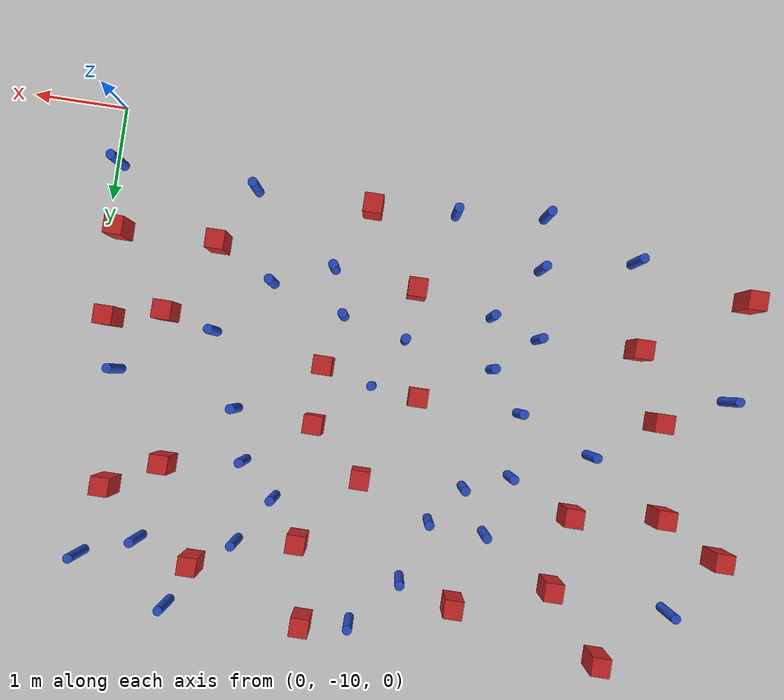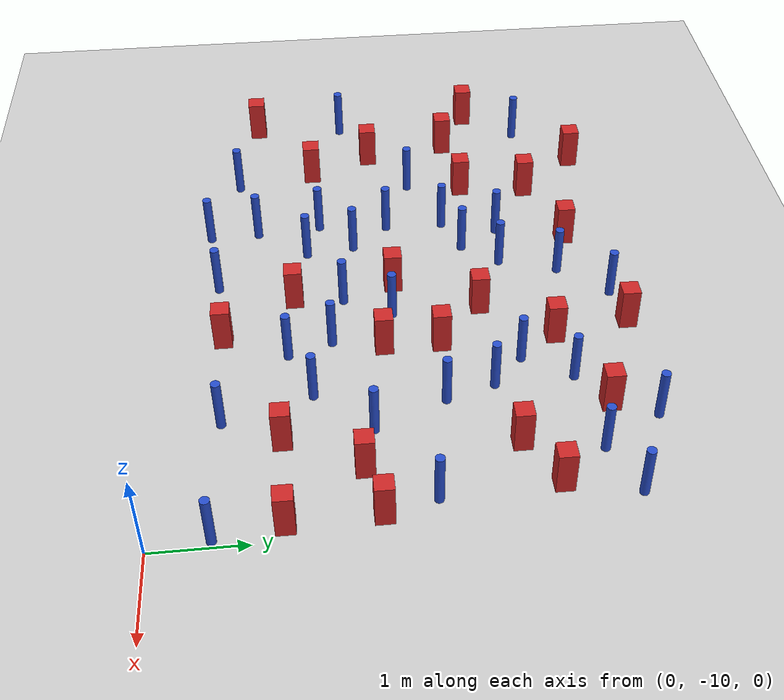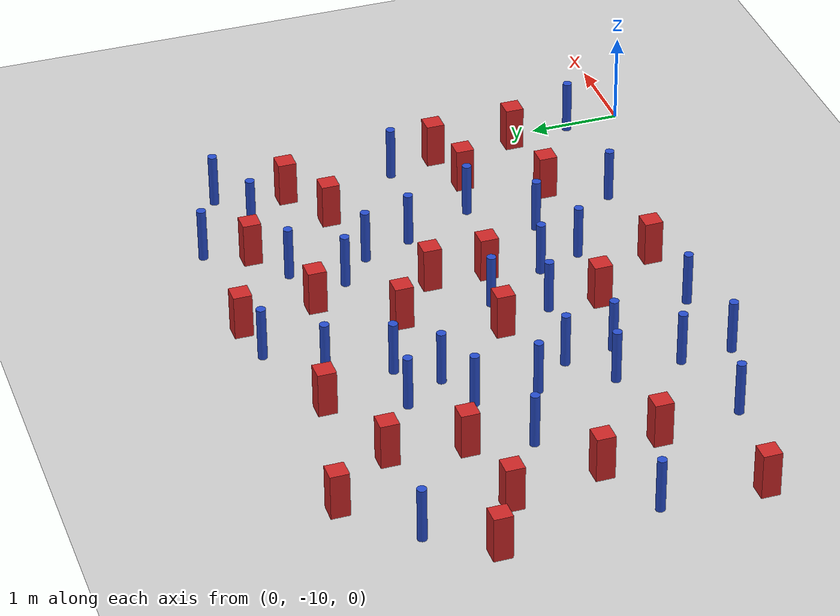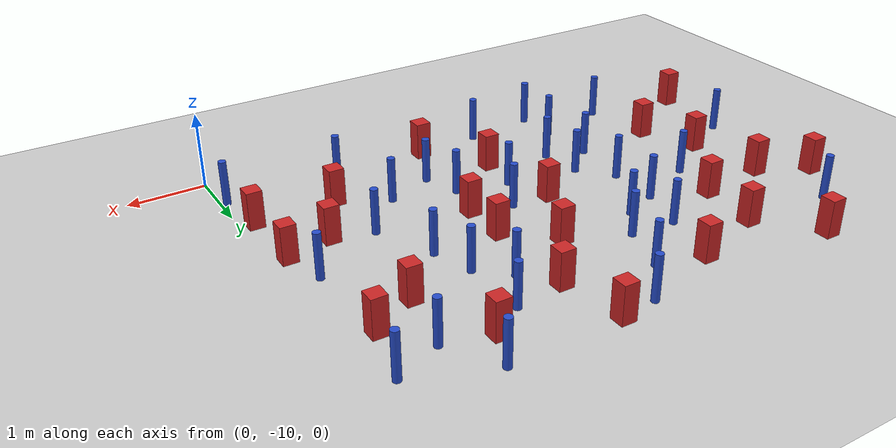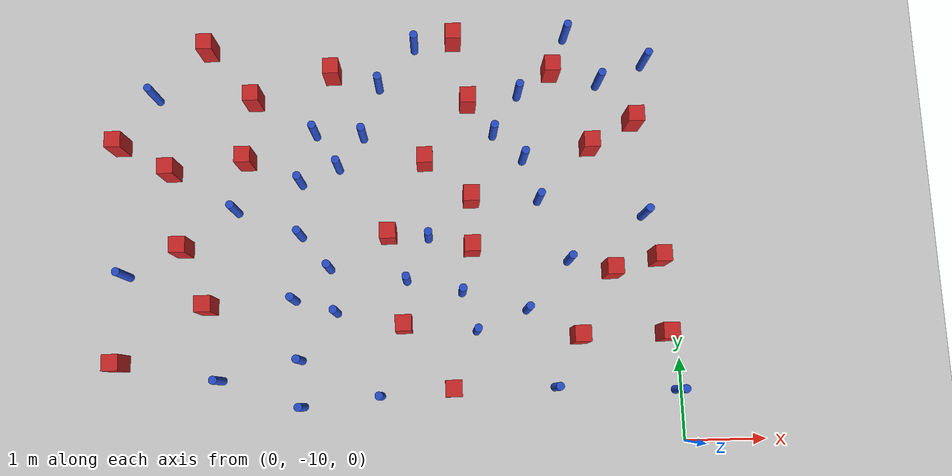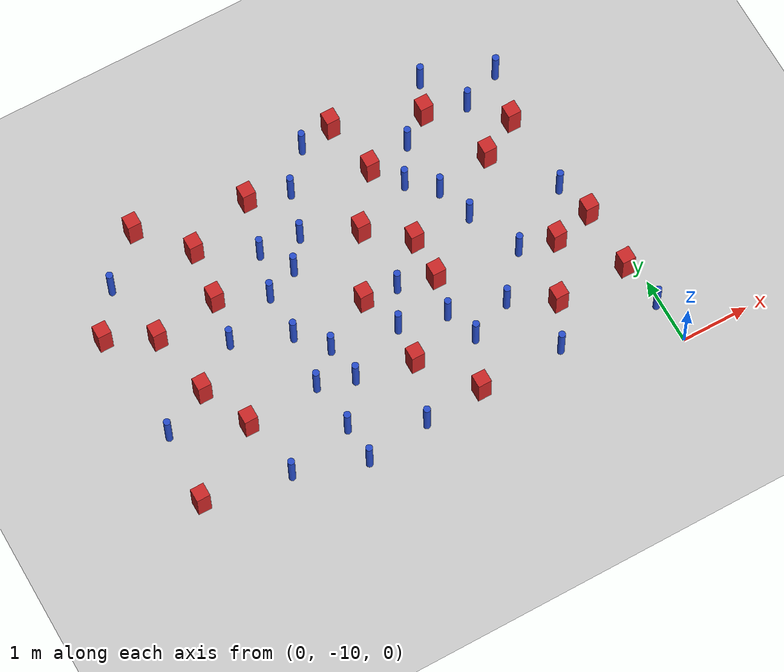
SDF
<sdf version="1.6">
 <world name="default">
  <model name="ground_plane">
   <static>1</static>
   <link name="link">
    <collision name="collision">
     <geometry><plane><normal>0 0 1</normal><size>100 100</size></plane></geometry>
     <surface><friction><ode><mu>100</mu><mu2>50</mu2></ode></friction></surface>
    </collision>
    <visual name="visual">
     <cast_shadows>0</cast_shadows>
     <geometry><plane><normal>0 0 1</normal><size>100 100</size></plane></geometry>
     <material>
      <ambient>1.0 1.0 1.0 1.0</ambient>
      <diffuse>0.8 0.8 0.8 1.0</diffuse>
      <specular>0.01 0.01 0.01 1.000000</specular>
     </material>
    </visual>
   </link>
  </model>
  <model name="pole_obstacle4">
   <static>true</static>
   <pose>-3.35792923234 -7.96196954808 7.38925637345e-09 -8.47170692793e-08 1.24976764454e-08 -1.74513093039e-07</pose>
   <link name="link">
    <pose>0 0 0.3 0 -0 0</pose>
    <inertial>
     <mass>1</mass>
     <inertia><ixx>0.145833</ixx><ixy>0</ixy><ixz>0</ixz><iyy>0.145833</iyy><iyz>0</iyz><izz>0.125</izz></inertia>
    </inertial>
    <collision name="collision">
     <geometry><cylinder><radius>0.05</radius><length>.6</length></cylinder></geometry>
    </collision>
    <visual name="visual">
     <geometry><cylinder><radius>0.05</radius><length>.6</length></cylinder></geometry>
     <material>
      <script><name>Gazebo/Blue</name><uri>file://media/materials/scripts/gazebo.material</uri></script>
     </material>
    </visual>
   </link>
  </model>
  <model name="pole_obstacle13">
   <static>true</static>
   <pose>-1.33353379833 -7.7553256667 7.38925637345e-09 -8.47170692799e-08 1.24976765033e-08 -1.74513093018e-07</pose>
   <link name="link">
    <pose>0 0 0.3 0 -0 0</pose>
    <inertial>
     <mass>1</mass>
     <inertia><ixx>0.145833</ixx><ixy>0</ixy><ixz>0</ixz><iyy>0.145833</iyy><iyz>0</iyz><izz>0.125</izz></inertia>
    </inertial>
    <collision name="collision">
     <geometry><cylinder><radius>0.05</radius><length>.6</length></cylinder></geometry>
    </collision>
    <visual name="visual">
     <geometry><cylinder><radius>0.05</radius><length>.6</length></cylinder></geometry>
     <material>
      <script><name>Gazebo/Blue</name><uri>file://media/materials/scripts/gazebo.material</uri></script>
     </material>
    </visual>
   </link>
  </model>
  <model name="square_post_obstacle11">
   <static>true</static>
   <pose>-5.36677755158 -6.3792738897 1.91545236811e-07 -7.35059704564e-06 1.12565212e-07 2.39332434364e-05</pose>
   <link name="link">
    <pose>0 0 0.25 0 -0 0</pose>
    <inertial>
     <mass>100</mass>
     <inertia>
      <ixx>0.166667</ixx>
      <ixy>0</ixy>
      <ixz>0</ixz>
      <iyy>0.166667</iyy>
      <iyz>0</iyz>
      <izz>0.166667</izz>
     </inertia>
    </inertial>
    <collision name="collision"><geometry><box><size>.2 .2 .5</size></box></geometry></collision>
    <visual name="visual">
     <geometry><box><size>.2 .2 .5</size></box></geometry>
     <material>
      <script><name>Gazebo/Red</name><uri>file://media/materials/scripts/gazebo.material</uri></script>
     </material>
    </visual>
   </link>
  </model>
  <model name="pole_obstacle15">
   <static>true</static>
   <pose>-6.84404924629 -7.82483388145 7.38925637345e-09 -8.47170692796e-08 1.24976764786e-08 -1.74513093032e-07</pose>
   <link name="link">
    <pose>0 0 0.3 0 -0 0</pose>
    <inertial>
     <mass>1</mass>
     <inertia><ixx>0.145833</ixx><ixy>0</ixy><ixz>0</ixz><iyy>0.145833</iyy><iyz>0</iyz><izz>0.125</izz></inertia>
    </inertial>
    <collision name="collision">
     <geometry><cylinder><radius>0.05</radius><length>.6</length></cylinder></geometry>
    </collision>
    <visual name="visual">
     <geometry><cylinder><radius>0.05</radius><length>.6</length></cylinder></geometry>
     <material>
      <script><name>Gazebo/Blue</name><uri>file://media/materials/scripts/gazebo.material</uri></script>
     </material>
    </visual>
   </link>
  </model>
  <model name="square_post_obstacle16">
   <static>true</static>
   <pose>-6.91296433391 -8.90215459807 1.91545236811e-07 -7.35059704564e-06 1.12565212e-07 2.39332434364e-05</pose>
   <link name="link">
    <pose>0 0 0.25 0 -0 0</pose>
    <inertial>
     <mass>100</mass>
     <inertia>
      <ixx>0.166667</ixx>
      <ixy>0</ixy>
      <ixz>0</ixz>
      <iyy>0.166667</iyy>
      <iyz>0</iyz>
      <izz>0.166667</izz>
     </inertia>
    </inertial>
    <collision name="collision"><geometry><box><size>.2 .2 .5</size></box></geometry></collision>
    <visual name="visual">
     <geometry><box><size>.2 .2 .5</size></box></geometry>
     <material>
      <script><name>Gazebo/Red</name><uri>file://media/materials/scripts/gazebo.material</uri></script>
     </material>
    </visual>
   </link>
  </model>
  <model name="pole_obstacle20">
   <static>true</static>
   <pose>-5.65574733196 -9.14257695707 7.38925637345e-09 -8.471706928e-08 1.24976765081e-08 -1.74513093015e-07</pose>
   <link name="link">
    <pose>0 0 0.3 0 -0 0</pose>
    <inertial>
     <mass>1</mass>
     <inertia><ixx>0.145833</ixx><ixy>0</ixy><ixz>0</ixz><iyy>0.145833</iyy><iyz>0</iyz><izz>0.125</izz></inertia>
    </inertial>
    <collision name="collision">
     <geometry><cylinder><radius>0.05</radius><length>.6</length></cylinder></geometry>
    </collision>
    <visual name="visual">
     <geometry><cylinder><radius>0.05</radius><length>.6</length></cylinder></geometry>
     <material>
      <script><name>Gazebo/Blue</name><uri>file://media/materials/scripts/gazebo.material</uri></script>
     </material>
    </visual>
   </link>
  </model>
  <model name="pole_obstacle21">
   <static>true</static>
   <pose>-4.31479446998 -7.7911242373 7.38925637345e-09 -8.47170692796e-08 1.24976764786e-08 -1.74513093032e-07</pose>
   <link name="link">
    <pose>0 0 0.3 0 -0 0</pose>
    <inertial>
     <mass>1</mass>
     <inertia><ixx>0.145833</ixx><ixy>0</ixy><ixz>0</ixz><iyy>0.145833</iyy><iyz>0</iyz><izz>0.125</izz></inertia>
    </inertial>
    <collision name="collision">
     <geometry><cylinder><radius>0.05</radius><length>.6</length></cylinder></geometry>
    </collision>
    <visual name="visual">
     <geometry><cylinder><radius>0.05</radius><length>.6</length></cylinder></geometry>
     <material>
      <script><name>Gazebo/Blue</name><uri>file://media/materials/scripts/gazebo.material</uri></script>
     </material>
    </visual>
   </link>
  </model>
  <model name="pole_obstacle31">
   <static>true</static>
   <pose>-1.85217105316 -6.44201122828 7.38925637345e-09 -8.47170692799e-08 1.24976765033e-08 -1.74513093018e-07</pose>
   <link name="link">
    <pose>0 0 0.3 0 -0 0</pose>
    <inertial>
     <mass>1</mass>
     <inertia><ixx>0.145833</ixx><ixy>0</ixy><ixz>0</ixz><iyy>0.145833</iyy><iyz>0</iyz><izz>0.125</izz></inertia>
    </inertial>
    <collision name="collision">
     <geometry><cylinder><radius>0.05</radius><length>.6</length></cylinder></geometry>
    </collision>
    <visual name="visual">
     <geometry><cylinder><radius>0.05</radius><length>.6</length></cylinder></geometry>
     <material>
      <script><name>Gazebo/Blue</name><uri>file://media/materials/scripts/gazebo.material</uri></script>
     </material>
    </visual>
   </link>
  </model>
  <model name="square_post_obstacle26">
   <static>true</static>
   <pose>-0.211819601924 -7.74384271224 1.91545236811e-07 -7.35059704564e-06 1.12565212e-07 2.39332434364e-05</pose>
   <link name="link">
    <pose>0 0 0.25 0 -0 0</pose>
    <inertial>
     <mass>100</mass>
     <inertia>
      <ixx>0.166667</ixx>
      <ixy>0</ixy>
      <ixz>0</ixz>
      <iyy>0.166667</iyy>
      <iyz>0</iyz>
      <izz>0.166667</izz>
     </inertia>
    </inertial>
    <collision name="collision"><geometry><box><size>.2 .2 .5</size></box></geometry></collision>
    <visual name="visual">
     <geometry><box><size>.2 .2 .5</size></box></geometry>
     <material>
      <script><name>Gazebo/Red</name><uri>file://media/materials/scripts/gazebo.material</uri></script>
     </material>
    </visual>
   </link>
  </model>
  <model name="pole_obstacle39">
   <static>true</static>
   <pose>-0.261942376068 -5.21114920361 7.38925637345e-09 -8.47170692799e-08 1.24976765096e-08 -1.74513093014e-07</pose>
   <link name="link">
    <pose>0 0 0.3 0 -0 0</pose>
    <inertial>
     <mass>1</mass>
     <inertia><ixx>0.145833</ixx><ixy>0</ixy><ixz>0</ixz><iyy>0.145833</iyy><iyz>0</iyz><izz>0.125</izz></inertia>
    </inertial>
    <collision name="collision">
     <geometry><cylinder><radius>0.05</radius><length>.6</length></cylinder></geometry>
    </collision>
    <visual name="visual">
     <geometry><cylinder><radius>0.05</radius><length>.6</length></cylinder></geometry>
     <material>
      <script><name>Gazebo/Blue</name><uri>file://media/materials/scripts/gazebo.material</uri></script>
     </material>
    </visual>
   </link>
  </model>
  <model name="square_post_obstacle33">
   <static>true</static>
   <pose>-5.27045506755 -5.58700413801 1.91545236811e-07 -7.35059704564e-06 1.12565212e-07 2.39332434364e-05</pose>
   <link name="link">
    <pose>0 0 0.25 0 -0 0</pose>
    <inertial>
     <mass>100</mass>
     <inertia>
      <ixx>0.166667</ixx>
      <ixy>0</ixy>
      <ixz>0</ixz>
      <iyy>0.166667</iyy>
      <iyz>0</iyz>
      <izz>0.166667</izz>
     </inertia>
    </inertial>
    <collision name="collision"><geometry><box><size>.2 .2 .5</size></box></geometry></collision>
    <visual name="visual">
     <geometry><box><size>.2 .2 .5</size></box></geometry>
     <material>
      <script><name>Gazebo/Red</name><uri>file://media/materials/scripts/gazebo.material</uri></script>
     </material>
    </visual>
   </link>
  </model>
  <model name="pole_obstacle60">
   <static>true</static>
   <pose>-3.69820152503 -9.37392309795 7.38925637345e-09 -8.47170692793e-08 1.24976764408e-08 -1.74513093041e-07</pose>
   <link name="link">
    <pose>0 0 0.3 0 -0 0</pose>
    <inertial>
     <mass>1</mass>
     <inertia><ixx>0.145833</ixx><ixy>0</ixy><ixz>0</ixz><iyy>0.145833</iyy><iyz>0</iyz><izz>0.125</izz></inertia>
    </inertial>
    <collision name="collision">
     <geometry><cylinder><radius>0.05</radius><length>.6</length></cylinder></geometry>
    </collision>
    <visual name="visual">
     <geometry><cylinder><radius>0.05</radius><length>.6</length></cylinder></geometry>
     <material>
      <script><name>Gazebo/Blue</name><uri>file://media/materials/scripts/gazebo.material</uri></script>
     </material>
    </visual>
   </link>
  </model>
  <model name="square_post_obstacle49">
   <static>true</static>
   <pose>-1.24348084745 -8.6938555211 1.91545236811e-07 -7.35059704564e-06 1.12565212e-07 2.39332434364e-05</pose>
   <link name="link">
    <pose>0 0 0.25 0 -0 0</pose>
    <inertial>
     <mass>100</mass>
     <inertia>
      <ixx>0.166667</ixx>
      <ixy>0</ixy>
      <ixz>0</ixz>
      <iyy>0.166667</iyy>
      <iyz>0</iyz>
      <izz>0.166667</izz>
     </inertia>
    </inertial>
    <collision name="collision"><geometry><box><size>.2 .2 .5</size></box></geometry></collision>
    <visual name="visual">
     <geometry><box><size>.2 .2 .5</size></box></geometry>
     <material>
      <script><name>Gazebo/Red</name><uri>file://media/materials/scripts/gazebo.material</uri></script>
     </material>
    </visual>
   </link>
  </model>
  <model name="pole_obstacle68">
   <static>true</static>
   <pose>-6.52651157915 -5.52801020074 7.38925637345e-09 -8.47170692796e-08 1.24976764786e-08 -1.74513093032e-07</pose>
   <link name="link">
    <pose>0 0 0.3 0 -0 0</pose>
    <inertial>
     <mass>1</mass>
     <inertia><ixx>0.145833</ixx><ixy>0</ixy><ixz>0</ixz><iyy>0.145833</iyy><iyz>0</iyz><izz>0.125</izz></inertia>
    </inertial>
    <collision name="collision">
     <geometry><cylinder><radius>0.05</radius><length>.6</length></cylinder></geometry>
    </collision>
    <visual name="visual">
     <geometry><cylinder><radius>0.05</radius><length>.6</length></cylinder></geometry>
     <material>
      <script><name>Gazebo/Blue</name><uri>file://media/materials/scripts/gazebo.material</uri></script>
     </material>
    </visual>
   </link>
  </model>
  <model name="square_post_obstacle64">
   <static>true</static>
   <pose>-6.14695095295 -7.49261192569 1.91545236811e-07 -7.35059704564e-06 1.12565212e-07 2.39332434364e-05</pose>
   <link name="link">
    <pose>0 0 0.25 0 -0 0</pose>
    <inertial>
     <mass>100</mass>
     <inertia>
      <ixx>0.166667</ixx>
      <ixy>0</ixy>
      <ixz>0</ixz>
      <iyy>0.166667</iyy>
      <iyz>0</iyz>
      <izz>0.166667</izz>
     </inertia>
    </inertial>
    <collision name="collision"><geometry><box><size>.2 .2 .5</size></box></geometry></collision>
    <visual name="visual">
     <geometry><box><size>.2 .2 .5</size></box></geometry>
     <material>
      <script><name>Gazebo/Red</name><uri>file://media/materials/scripts/gazebo.material</uri></script>
     </material>
    </visual>
   </link>
  </model>
  <model name="pole_obstacle77">
   <static>true</static>
   <pose>-1.56097928796 -9.31525062376 7.38925637345e-09 -8.47170692798e-08 1.24976764881e-08 -1.74513093027e-07</pose>
   <link name="link">
    <pose>0 0 0.3 0 -0 0</pose>
    <inertial>
     <mass>1</mass>
     <inertia><ixx>0.145833</ixx><ixy>0</ixy><ixz>0</ixz><iyy>0.145833</iyy><iyz>0</iyz><izz>0.125</izz></inertia>
    </inertial>
    <collision name="collision">
     <geometry><cylinder><radius>0.05</radius><length>.6</length></cylinder></geometry>
    </collision>
    <visual name="visual">
     <geometry><cylinder><radius>0.05</radius><length>.6</length></cylinder></geometry>
     <material>
      <script><name>Gazebo/Blue</name><uri>file://media/materials/scripts/gazebo.material</uri></script>
     </material>
    </visual>
   </link>
  </model>
  <model name="square_post_obstacle69">
   <static>true</static>
   <pose>-6.97816622147 -6.14975965903 1.91545236811e-07 -7.35059704564e-06 1.12565212e-07 2.39332434364e-05</pose>
   <link name="link">
    <pose>0 0 0.25 0 -0 0</pose>
    <inertial>
     <mass>100</mass>
     <inertia>
      <ixx>0.166667</ixx>
      <ixy>0</ixy>
      <ixz>0</ixz>
      <iyy>0.166667</iyy>
      <iyz>0</iyz>
      <izz>0.166667</izz>
     </inertia>
    </inertial>
    <collision name="collision"><geometry><box><size>.2 .2 .5</size></box></geometry></collision>
    <visual name="visual">
     <geometry><box><size>.2 .2 .5</size></box></geometry>
     <material>
      <script><name>Gazebo/Red</name><uri>file://media/materials/scripts/gazebo.material</uri></script>
     </material>
    </visual>
   </link>
  </model>
  <model name="square_post_obstacle79">
   <static>true</static>
   <pose>-4.26626027655 -5.25746946212 1.91545236811e-07 -7.35059704564e-06 1.12565212e-07 2.39332434364e-05</pose>
   <link name="link">
    <pose>0 0 0.25 0 -0 0</pose>
    <inertial>
     <mass>100</mass>
     <inertia>
      <ixx>0.166667</ixx>
      <ixy>0</ixy>
      <ixz>0</ixz>
      <iyy>0.166667</iyy>
      <iyz>0</iyz>
      <izz>0.166667</izz>
     </inertia>
    </inertial>
    <collision name="collision"><geometry><box><size>.2 .2 .5</size></box></geometry></collision>
    <visual name="visual">
     <geometry><box><size>.2 .2 .5</size></box></geometry>
     <material>
      <script><name>Gazebo/Red</name><uri>file://media/materials/scripts/gazebo.material</uri></script>
     </material>
    </visual>
   </link>
  </model>
  <model name="square_post_obstacle81">
   <static>true</static>
   <pose>-2.53152900916 -6.93609529855 1.91545236811e-07 -7.35059704564e-06 1.12565212e-07 2.39332434364e-05</pose>
   <link name="link">
    <pose>0 0 0.25 0 -0 0</pose>
    <inertial>
     <mass>100</mass>
     <inertia>
      <ixx>0.166667</ixx>
      <ixy>0</ixy>
      <ixz>0</ixz>
      <iyy>0.166667</iyy>
      <iyz>0</iyz>
      <izz>0.166667</izz>
     </inertia>
    </inertial>
    <collision name="collision"><geometry><box><size>.2 .2 .5</size></box></geometry></collision>
    <visual name="visual">
     <geometry><box><size>.2 .2 .5</size></box></geometry>
     <material>
      <script><name>Gazebo/Red</name><uri>file://media/materials/scripts/gazebo.material</uri></script>
     </material>
    </visual>
   </link>
  </model>
  <model name="pole_obstacle94">
   <static>true</static>
   <pose>-1.68026760827 -6.97615172641 7.38925637345e-09 -8.47170692799e-08 1.24976765033e-08 -1.74513093018e-07</pose>
   <link name="link">
    <pose>0 0 0.3 0 -0 0</pose>
    <inertial>
     <mass>1</mass>
     <inertia><ixx>0.145833</ixx><ixy>0</ixy><ixz>0</ixz><iyy>0.145833</iyy><iyz>0</iyz><izz>0.125</izz></inertia>
    </inertial>
    <collision name="collision">
     <geometry><cylinder><radius>0.05</radius><length>.6</length></cylinder></geometry>
    </collision>
    <visual name="visual">
     <geometry><cylinder><radius>0.05</radius><length>.6</length></cylinder></geometry>
     <material>
      <script><name>Gazebo/Blue</name><uri>file://media/materials/scripts/gazebo.material</uri></script>
     </material>
    </visual>
   </link>
  </model>
  <model name="pole_obstacle97">
   <static>true</static>
   <pose>-3.88304181718 -6.09895405632 7.38925637345e-09 -8.47170692798e-08 1.24976765033e-08 -1.74513093019e-07</pose>
   <link name="link">
    <pose>0 0 0.3 0 -0 0</pose>
    <inertial>
     <mass>1</mass>
     <inertia><ixx>0.145833</ixx><ixy>0</ixy><ixz>0</ixz><iyy>0.145833</iyy><iyz>0</iyz><izz>0.125</izz></inertia>
    </inertial>
    <collision name="collision">
     <geometry><cylinder><radius>0.05</radius><length>.6</length></cylinder></geometry>
    </collision>
    <visual name="visual">
     <geometry><cylinder><radius>0.05</radius><length>.6</length></cylinder></geometry>
     <material>
      <script><name>Gazebo/Blue</name><uri>file://media/materials/scripts/gazebo.material</uri></script>
     </material>
    </visual>
   </link>
  </model>
  <model name="pole_obstacle102">
   <static>true</static>
   <pose>-2.50389605011 -8.60637912382 7.38925637345e-09 -8.47170692793e-08 1.24976764408e-08 -1.74513093041e-07</pose>
   <link name="link">
    <pose>0 0 0.3 0 -0 0</pose>
    <inertial>
     <mass>1</mass>
     <inertia><ixx>0.145833</ixx><ixy>0</ixy><ixz>0</ixz><iyy>0.145833</iyy><iyz>0</iyz><izz>0.125</izz></inertia>
    </inertial>
    <collision name="collision">
     <geometry><cylinder><radius>0.05</radius><length>.6</length></cylinder></geometry>
    </collision>
    <visual name="visual">
     <geometry><cylinder><radius>0.05</radius><length>.6</length></cylinder></geometry>
     <material>
      <script><name>Gazebo/Blue</name><uri>file://media/materials/scripts/gazebo.material</uri></script>
     </material>
    </visual>
   </link>
  </model>
  <model name="pole_obstacle106">
   <static>true</static>
   <pose>-4.67206306875 -6.69297388461 7.38925637345e-09 -8.47170692796e-08 1.24976764786e-08 -1.74513093032e-07</pose>
   <link name="link">
    <pose>0 0 0.3 0 -0 0</pose>
    <inertial>
     <mass>1</mass>
     <inertia><ixx>0.145833</ixx><ixy>0</ixy><ixz>0</ixz><iyy>0.145833</iyy><iyz>0</iyz><izz>0.125</izz></inertia>
    </inertial>
    <collision name="collision">
     <geometry><cylinder><radius>0.05</radius><length>.6</length></cylinder></geometry>
    </collision>
    <visual name="visual">
     <geometry><cylinder><radius>0.05</radius><length>.6</length></cylinder></geometry>
     <material>
      <script><name>Gazebo/Blue</name><uri>file://media/materials/scripts/gazebo.material</uri></script>
     </material>
    </visual>
   </link>
  </model>
  <model name="square_post_obstacle102">
   <static>true</static>
   <pose>-0.80559211448 -7.88715377272 1.91545236811e-07 -7.35059704564e-06 1.12565212e-07 2.39332434364e-05</pose>
   <link name="link">
    <pose>0 0 0.25 0 -0 0</pose>
    <inertial>
     <mass>100</mass>
     <inertia>
      <ixx>0.166667</ixx>
      <ixy>0</ixy>
      <ixz>0</ixz>
      <iyy>0.166667</iyy>
      <iyz>0</iyz>
      <izz>0.166667</izz>
     </inertia>
    </inertial>
    <collision name="collision"><geometry><box><size>.2 .2 .5</size></box></geometry></collision>
    <visual name="visual">
     <geometry><box><size>.2 .2 .5</size></box></geometry>
     <material>
      <script><name>Gazebo/Red</name><uri>file://media/materials/scripts/gazebo.material</uri></script>
     </material>
    </visual>
   </link>
  </model>
  <model name="square_post_obstacle106">
   <static>true</static>
   <pose>-5.82454851999 -8.22466822466 1.91545236811e-07 -7.35059704564e-06 1.12565212e-07 2.39332434364e-05</pose>
   <link name="link">
    <pose>0 0 0.25 0 -0 0</pose>
    <inertial>
     <mass>100</mass>
     <inertia>
      <ixx>0.166667</ixx>
      <ixy>0</ixy>
      <ixz>0</ixz>
      <iyy>0.166667</iyy>
      <iyz>0</iyz>
      <izz>0.166667</izz>
     </inertia>
    </inertial>
    <collision name="collision"><geometry><box><size>.2 .2 .5</size></box></geometry></collision>
    <visual name="visual">
     <geometry><box><size>.2 .2 .5</size></box></geometry>
     <material>
      <script><name>Gazebo/Red</name><uri>file://media/materials/scripts/gazebo.material</uri></script>
     </material>
    </visual>
   </link>
  </model>
  <model name="square_post_obstacle109">
   <static>true</static>
   <pose>-6.31889137783 -6.50301779825 1.91545236811e-07 -7.35059704564e-06 1.12565212e-07 2.39332434364e-05</pose>
   <link name="link">
    <pose>0 0 0.25 0 -0 0</pose>
    <inertial>
     <mass>100</mass>
     <inertia>
      <ixx>0.166667</ixx>
      <ixy>0</ixy>
      <ixz>0</ixz>
      <iyy>0.166667</iyy>
      <iyz>0</iyz>
      <izz>0.166667</izz>
     </inertia>
    </inertial>
    <collision name="collision"><geometry><box><size>.2 .2 .5</size></box></geometry></collision>
    <visual name="visual">
     <geometry><box><size>.2 .2 .5</size></box></geometry>
     <material>
      <script><name>Gazebo/Red</name><uri>file://media/materials/scripts/gazebo.material</uri></script>
     </material>
    </visual>
   </link>
  </model>
  <model name="square_post_obstacle110">
   <static>true</static>
   <pose>-3.10238827582 -6.44090415768 1.91545236811e-07 -7.35059704564e-06 1.12565212e-07 2.39332434364e-05</pose>
   <link name="link">
    <pose>0 0 0.25 0 -0 0</pose>
    <inertial>
     <mass>100</mass>
     <inertia>
      <ixx>0.166667</ixx>
      <ixy>0</ixy>
      <ixz>0</ixz>
      <iyy>0.166667</iyy>
      <iyz>0</iyz>
      <izz>0.166667</izz>
     </inertia>
    </inertial>
    <collision name="collision"><geometry><box><size>.2 .2 .5</size></box></geometry></collision>
    <visual name="visual">
     <geometry><box><size>.2 .2 .5</size></box></geometry>
     <material>
      <script><name>Gazebo/Red</name><uri>file://media/materials/scripts/gazebo.material</uri></script>
     </material>
    </visual>
   </link>
  </model>
  <model name="square_post_obstacle114">
   <static>true</static>
   <pose>-3.40207217627 -8.51401578266 1.91545236811e-07 -7.35059704564e-06 1.12565212e-07 2.39332434364e-05</pose>
   <link name="link">
    <pose>0 0 0.25 0 -0 0</pose>
    <inertial>
     <mass>100</mass>
     <inertia>
      <ixx>0.166667</ixx>
      <ixy>0</ixy>
      <ixz>0</ixz>
      <iyy>0.166667</iyy>
      <iyz>0</iyz>
      <izz>0.166667</izz>
     </inertia>
    </inertial>
    <collision name="collision"><geometry><box><size>.2 .2 .5</size></box></geometry></collision>
    <visual name="visual">
     <geometry><box><size>.2 .2 .5</size></box></geometry>
     <material>
      <script><name>Gazebo/Red</name><uri>file://media/materials/scripts/gazebo.material</uri></script>
     </material>
    </visual>
   </link>
  </model>
  <model name="square_post_obstacle118">
   <static>true</static>
   <pose>-2.54029912251 -5.67865748309 1.91545236811e-07 -7.35059704564e-06 1.12565212e-07 2.39332434364e-05</pose>
   <link name="link">
    <pose>0 0 0.25 0 -0 0</pose>
    <inertial>
     <mass>100</mass>
     <inertia>
      <ixx>0.166667</ixx>
      <ixy>0</ixy>
      <ixz>0</ixz>
      <iyy>0.166667</iyy>
      <iyz>0</iyz>
      <izz>0.166667</izz>
     </inertia>
    </inertial>
    <collision name="collision"><geometry><box><size>.2 .2 .5</size></box></geometry></collision>
    <visual name="visual">
     <geometry><box><size>.2 .2 .5</size></box></geometry>
     <material>
      <script><name>Gazebo/Red</name><uri>file://media/materials/scripts/gazebo.material</uri></script>
     </material>
    </visual>
   </link>
  </model>
  <model name="pole_obstacle124">
   <static>true</static>
   <pose>-4.64843672286 -9.48180248433 7.38925637345e-09 -8.471706928e-08 1.24976765081e-08 -1.74513093015e-07</pose>
   <link name="link">
    <pose>0 0 0.3 0 -0 0</pose>
    <inertial>
     <mass>1</mass>
     <inertia><ixx>0.145833</ixx><ixy>0</ixy><ixz>0</ixz><iyy>0.145833</iyy><iyz>0</iyz><izz>0.125</izz></inertia>
    </inertial>
    <collision name="collision">
     <geometry><cylinder><radius>0.05</radius><length>.6</length></cylinder></geometry>
    </collision>
    <visual name="visual">
     <geometry><cylinder><radius>0.05</radius><length>.6</length></cylinder></geometry>
     <material>
      <script><name>Gazebo/Blue</name><uri>file://media/materials/scripts/gazebo.material</uri></script>
     </material>
    </visual>
   </link>
  </model>
  <model name="pole_obstacle125">
   <static>true</static>
   <pose>-3.07714503484 -7.42717965138 7.38925637345e-09 -8.47170692798e-08 1.24976765033e-08 -1.74513093019e-07</pose>
   <link name="link">
    <pose>0 0 0.3 0 -0 0</pose>
    <inertial>
     <mass>1</mass>
     <inertia><ixx>0.145833</ixx><ixy>0</ixy><ixz>0</ixz><iyy>0.145833</iyy><iyz>0</iyz><izz>0.125</izz></inertia>
    </inertial>
    <collision name="collision">
     <geometry><cylinder><radius>0.05</radius><length>.6</length></cylinder></geometry>
    </collision>
    <visual name="visual">
     <geometry><cylinder><radius>0.05</radius><length>.6</length></cylinder></geometry>
     <material>
      <script><name>Gazebo/Blue</name><uri>file://media/materials/scripts/gazebo.material</uri></script>
     </material>
    </visual>
   </link>
  </model>
  <model name="pole_obstacle131">
   <static>true</static>
   <pose>-2.22358065491 -6.10266312643 7.38925637345e-09 -8.47170692798e-08 1.24976765033e-08 -1.74513093019e-07</pose>
   <link name="link">
    <pose>0 0 0.3 0 -0 0</pose>
    <inertial>
     <mass>1</mass>
     <inertia><ixx>0.145833</ixx><ixy>0</ixy><ixz>0</ixz><iyy>0.145833</iyy><iyz>0</iyz><izz>0.125</izz></inertia>
    </inertial>
    <collision name="collision">
     <geometry><cylinder><radius>0.05</radius><length>.6</length></cylinder></geometry>
    </collision>
    <visual name="visual">
     <geometry><cylinder><radius>0.05</radius><length>.6</length></cylinder></geometry>
     <material>
      <script><name>Gazebo/Blue</name><uri>file://media/materials/scripts/gazebo.material</uri></script>
     </material>
    </visual>
   </link>
  </model>
  <model name="pole_obstacle134">
   <static>true</static>
   <pose>-1.25732318257 -4.81725899943 7.38925637345e-09 -8.47170692799e-08 1.24976765033e-08 -1.74513093018e-07</pose>
   <link name="link">
    <pose>0 0 0.3 0 -0 0</pose>
    <inertial>
     <mass>1</mass>
     <inertia><ixx>0.145833</ixx><ixy>0</ixy><ixz>0</ixz><iyy>0.145833</iyy><iyz>0</iyz><izz>0.125</izz></inertia>
    </inertial>
    <collision name="collision">
     <geometry><cylinder><radius>0.05</radius><length>.6</length></cylinder></geometry>
    </collision>
    <visual name="visual">
     <geometry><cylinder><radius>0.05</radius><length>.6</length></cylinder></geometry>
     <material>
      <script><name>Gazebo/Blue</name><uri>file://media/materials/scripts/gazebo.material</uri></script>
     </material>
    </visual>
   </link>
  </model>
  <model name="pole_obstacle135">
   <static>true</static>
   <pose>-2.67182151784 -8.12239517271 7.38925637345e-09 -8.47170692793e-08 1.24976764408e-08 -1.74513093041e-07</pose>
   <link name="link">
    <pose>0 0 0.3 0 -0 0</pose>
    <inertial>
     <mass>1</mass>
     <inertia><ixx>0.145833</ixx><ixy>0</ixy><ixz>0</ixz><iyy>0.145833</iyy><iyz>0</iyz><izz>0.125</izz></inertia>
    </inertial>
    <collision name="collision">
     <geometry><cylinder><radius>0.05</radius><length>.6</length></cylinder></geometry>
    </collision>
    <visual name="visual">
     <geometry><cylinder><radius>0.05</radius><length>.6</length></cylinder></geometry>
     <material>
      <script><name>Gazebo/Blue</name><uri>file://media/materials/scripts/gazebo.material</uri></script>
     </material>
    </visual>
   </link>
  </model>
  <model name="pole_obstacle138">
   <static>true</static>
   <pose>-0.367023670437 -7.20215956488 7.38925637345e-09 -8.471706928e-08 1.24976765079e-08 -1.74513093015e-07</pose>
   <link name="link">
    <pose>0 0 0.3 0 -0 0</pose>
    <inertial>
     <mass>1</mass>
     <inertia><ixx>0.145833</ixx><ixy>0</ixy><ixz>0</ixz><iyy>0.145833</iyy><iyz>0</iyz><izz>0.125</izz></inertia>
    </inertial>
    <collision name="collision">
     <geometry><cylinder><radius>0.05</radius><length>.6</length></cylinder></geometry>
    </collision>
    <visual name="visual">
     <geometry><cylinder><radius>0.05</radius><length>.6</length></cylinder></geometry>
     <material>
      <script><name>Gazebo/Blue</name><uri>file://media/materials/scripts/gazebo.material</uri></script>
     </material>
    </visual>
   </link>
  </model>
  <model name="pole_obstacle147">
   <static>true</static>
   <pose>-0.0763852456282 -9.37932438397 7.38925637345e-09 -8.47170692796e-08 1.24976764728e-08 -1.74513093036e-07</pose>
   <link name="link">
    <pose>0 0 0.3 0 -0 0</pose>
    <inertial>
     <mass>1</mass>
     <inertia><ixx>0.145833</ixx><ixy>0</ixy><ixz>0</ixz><iyy>0.145833</iyy><iyz>0</iyz><izz>0.125</izz></inertia>
    </inertial>
    <collision name="collision">
     <geometry><cylinder><radius>0.05</radius><length>.6</length></cylinder></geometry>
    </collision>
    <visual name="visual">
     <geometry><cylinder><radius>0.05</radius><length>.6</length></cylinder></geometry>
     <material>
      <script><name>Gazebo/Blue</name><uri>file://media/materials/scripts/gazebo.material</uri></script>
     </material>
    </visual>
   </link>
  </model>
  <model name="square_post_obstacle142">
   <static>true</static>
   <pose>-2.70671766294 -4.83286565238 1.91545236811e-07 -7.35059704564e-06 1.12565212e-07 2.39332434364e-05</pose>
   <link name="link">
    <pose>0 0 0.25 0 -0 0</pose>
    <inertial>
     <mass>100</mass>
     <inertia>
      <ixx>0.166667</ixx>
      <ixy>0</ixy>
      <ixz>0</ixz>
      <iyy>0.166667</iyy>
      <iyz>0</iyz>
      <izz>0.166667</izz>
     </inertia>
    </inertial>
    <collision name="collision"><geometry><box><size>.2 .2 .5</size></box></geometry></collision>
    <visual name="visual">
     <geometry><box><size>.2 .2 .5</size></box></geometry>
     <material>
      <script><name>Gazebo/Red</name><uri>file://media/materials/scripts/gazebo.material</uri></script>
     </material>
    </visual>
   </link>
  </model>
  <model name="square_post_obstacle144">
   <static>true</static>
   <pose>-0.440603703685 -5.97278842094 1.91545236811e-07 -7.35059704564e-06 1.12565212e-07 2.39332434364e-05</pose>
   <link name="link">
    <pose>0 0 0.25 0 -0 0</pose>
    <inertial>
     <mass>100</mass>
     <inertia>
      <ixx>0.166667</ixx>
      <ixy>0</ixy>
      <ixz>0</ixz>
      <iyy>0.166667</iyy>
      <iyz>0</iyz>
      <izz>0.166667</izz>
     </inertia>
    </inertial>
    <collision name="collision"><geometry><box><size>.2 .2 .5</size></box></geometry></collision>
    <visual name="visual">
     <geometry><box><size>.2 .2 .5</size></box></geometry>
     <material>
      <script><name>Gazebo/Red</name><uri>file://media/materials/scripts/gazebo.material</uri></script>
     </material>
    </visual>
   </link>
  </model>
  <model name="pole_obstacle151">
   <static>true</static>
   <pose>-5.48434514109 -7.03734564619 7.38925637345e-09 -8.47170692796e-08 1.24976764786e-08 -1.74513093032e-07</pose>
   <link name="link">
    <pose>0 0 0.3 0 -0 0</pose>
    <inertial>
     <mass>1</mass>
     <inertia><ixx>0.145833</ixx><ixy>0</ixy><ixz>0</ixz><iyy>0.145833</iyy><iyz>0</iyz><izz>0.125</izz></inertia>
    </inertial>
    <collision name="collision">
     <geometry><cylinder><radius>0.05</radius><length>.6</length></cylinder></geometry>
    </collision>
    <visual name="visual">
     <geometry><cylinder><radius>0.05</radius><length>.6</length></cylinder></geometry>
     <material>
      <script><name>Gazebo/Blue</name><uri>file://media/materials/scripts/gazebo.material</uri></script>
     </material>
    </visual>
   </link>
  </model>
  <model name="square_post_obstacle147">
   <static>true</static>
   <pose>-2.53843200044 -7.56308375384 1.91545236811e-07 -7.35059704564e-06 1.12565212e-07 2.39332434364e-05</pose>
   <link name="link">
    <pose>0 0 0.25 0 -0 0</pose>
    <inertial>
     <mass>100</mass>
     <inertia>
      <ixx>0.166667</ixx>
      <ixy>0</ixy>
      <ixz>0</ixz>
      <iyy>0.166667</iyy>
      <iyz>0</iyz>
      <izz>0.166667</izz>
     </inertia>
    </inertial>
    <collision name="collision"><geometry><box><size>.2 .2 .5</size></box></geometry></collision>
    <visual name="visual">
     <geometry><box><size>.2 .2 .5</size></box></geometry>
     <material>
      <script><name>Gazebo/Red</name><uri>file://media/materials/scripts/gazebo.material</uri></script>
     </material>
    </visual>
   </link>
  </model>
  <model name="pole_obstacle153">
   <static>true</static>
   <pose>-1.89137932344 -5.58302856998 7.38925637345e-09 -8.47170692799e-08 1.24976765033e-08 -1.74513093018e-07</pose>
   <link name="link">
    <pose>0 0 0.3 0 -0 0</pose>
    <inertial>
     <mass>1</mass>
     <inertia><ixx>0.145833</ixx><ixy>0</ixy><ixz>0</ixz><iyy>0.145833</iyy><iyz>0</iyz><izz>0.125</izz></inertia>
    </inertial>
    <collision name="collision">
     <geometry><cylinder><radius>0.05</radius><length>.6</length></cylinder></geometry>
    </collision>
    <visual name="visual">
     <geometry><cylinder><radius>0.05</radius><length>.6</length></cylinder></geometry>
     <material>
      <script><name>Gazebo/Blue</name><uri>file://media/materials/scripts/gazebo.material</uri></script>
     </material>
    </visual>
   </link>
  </model>
  <model name="square_post_obstacle154">
   <static>true</static>
   <pose>-1.46057001346 -5.2861945116 1.91545236811e-07 -7.35059704564e-06 1.12565212e-07 2.39332434364e-05</pose>
   <link name="link">
    <pose>0 0 0.25 0 -0 0</pose>
    <inertial>
     <mass>100</mass>
     <inertia>
      <ixx>0.166667</ixx>
      <ixy>0</ixy>
      <ixz>0</ixz>
      <iyy>0.166667</iyy>
      <iyz>0</iyz>
      <izz>0.166667</izz>
     </inertia>
    </inertial>
    <collision name="collision"><geometry><box><size>.2 .2 .5</size></box></geometry></collision>
    <visual name="visual">
     <geometry><box><size>.2 .2 .5</size></box></geometry>
     <material>
      <script><name>Gazebo/Red</name><uri>file://media/materials/scripts/gazebo.material</uri></script>
     </material>
    </visual>
   </link>
  </model>
  <model name="square_post_obstacle156">
   <static>true</static>
   <pose>-2.81252348893 -9.30719275578 1.91545236811e-07 -7.35059704564e-06 1.12565212e-07 2.39332434364e-05</pose>
   <link name="link">
    <pose>0 0 0.25 0 -0 0</pose>
    <inertial>
     <mass>100</mass>
     <inertia>
      <ixx>0.166667</ixx>
      <ixy>0</ixy>
      <ixz>0</ixz>
      <iyy>0.166667</iyy>
      <iyz>0</iyz>
      <izz>0.166667</izz>
     </inertia>
    </inertial>
    <collision name="collision"><geometry><box><size>.2 .2 .5</size></box></geometry></collision>
    <visual name="visual">
     <geometry><box><size>.2 .2 .5</size></box></geometry>
     <material>
      <script><name>Gazebo/Red</name><uri>file://media/materials/scripts/gazebo.material</uri></script>
     </material>
    </visual>
   </link>
  </model>
  <model name="square_post_obstacle159">
   <static>true</static>
   <pose>-3.57738614525 -7.37992302127 1.91545236811e-07 -7.35059704564e-06 1.12565212e-07 2.39332434364e-05</pose>
   <link name="link">
    <pose>0 0 0.25 0 -0 0</pose>
    <inertial>
     <mass>100</mass>
     <inertia>
      <ixx>0.166667</ixx>
      <ixy>0</ixy>
      <ixz>0</ixz>
      <iyy>0.166667</iyy>
      <iyz>0</iyz>
      <izz>0.166667</izz>
     </inertia>
    </inertial>
    <collision name="collision"><geometry><box><size>.2 .2 .5</size></box></geometry></collision>
    <visual name="visual">
     <geometry><box><size>.2 .2 .5</size></box></geometry>
     <material>
      <script><name>Gazebo/Red</name><uri>file://media/materials/scripts/gazebo.material</uri></script>
     </material>
    </visual>
   </link>
  </model>
  <model name="pole_obstacle167">
   <static>true</static>
   <pose>-4.67569654181 -8.91766292153 7.38925637345e-09 -8.471706928e-08 1.24976765081e-08 -1.74513093015e-07</pose>
   <link name="link">
    <pose>0 0 0.3 0 -0 0</pose>
    <inertial>
     <mass>1</mass>
     <inertia><ixx>0.145833</ixx><ixy>0</ixy><ixz>0</ixz><iyy>0.145833</iyy><iyz>0</iyz><izz>0.125</izz></inertia>
    </inertial>
    <collision name="collision">
     <geometry><cylinder><radius>0.05</radius><length>.6</length></cylinder></geometry>
    </collision>
    <visual name="visual">
     <geometry><cylinder><radius>0.05</radius><length>.6</length></cylinder></geometry>
     <material>
      <script><name>Gazebo/Blue</name><uri>file://media/materials/scripts/gazebo.material</uri></script>
     </material>
    </visual>
   </link>
  </model>
  <model name="square_post_obstacle176">
   <static>true</static>
   <pose>-5.86743763974 -4.89573455463 1.91545236811e-07 -7.35059704564e-06 1.12565212e-07 2.39332434364e-05</pose>
   <link name="link">
    <pose>0 0 0.25 0 -0 0</pose>
    <inertial>
     <mass>100</mass>
     <inertia>
      <ixx>0.166667</ixx>
      <ixy>0</ixy>
      <ixz>0</ixz>
      <iyy>0.166667</iyy>
      <iyz>0</iyz>
      <izz>0.166667</izz>
     </inertia>
    </inertial>
    <collision name="collision"><geometry><box><size>.2 .2 .5</size></box></geometry></collision>
    <visual name="visual">
     <geometry><box><size>.2 .2 .5</size></box></geometry>
     <material>
      <script><name>Gazebo/Red</name><uri>file://media/materials/scripts/gazebo.material</uri></script>
     </material>
    </visual>
   </link>
  </model>
  <model name="pole_obstacle181">
   <static>true</static>
   <pose>-0.85938530947 -5.46315233256 7.38925637345e-09 -8.471706928e-08 1.24976765086e-08 -1.74513093015e-07</pose>
   <link name="link">
    <pose>0 0 0.3 0 -0 0</pose>
    <inertial>
     <mass>1</mass>
     <inertia><ixx>0.145833</ixx><ixy>0</ixy><ixz>0</ixz><iyy>0.145833</iyy><iyz>0</iyz><izz>0.125</izz></inertia>
    </inertial>
    <collision name="collision">
     <geometry><cylinder><radius>0.05</radius><length>.6</length></cylinder></geometry>
    </collision>
    <visual name="visual">
     <geometry><cylinder><radius>0.05</radius><length>.6</length></cylinder></geometry>
     <material>
      <script><name>Gazebo/Blue</name><uri>file://media/materials/scripts/gazebo.material</uri></script>
     </material>
    </visual>
   </link>
  </model>
  <model name="pole_obstacle184">
   <static>true</static>
   <pose>-4.75187159244 -8.1773399674 7.38925637345e-09 -8.471706928e-08 1.24976765081e-08 -1.74513093015e-07</pose>
   <link name="link">
    <pose>0 0 0.3 0 -0 0</pose>
    <inertial>
     <mass>1</mass>
     <inertia><ixx>0.145833</ixx><ixy>0</ixy><ixz>0</ixz><iyy>0.145833</iyy><iyz>0</iyz><izz>0.125</izz></inertia>
    </inertial>
    <collision name="collision">
     <geometry><cylinder><radius>0.05</radius><length>.6</length></cylinder></geometry>
    </collision>
    <visual name="visual">
     <geometry><cylinder><radius>0.05</radius><length>.6</length></cylinder></geometry>
     <material>
      <script><name>Gazebo/Blue</name><uri>file://media/materials/scripts/gazebo.material</uri></script>
     </material>
    </visual>
   </link>
  </model>
  <model name="pole_obstacle186">
   <static>true</static>
   <pose>-4.67241613702 -7.36969267346 7.38925637345e-09 -8.47170692796e-08 1.24976764786e-08 -1.74513093032e-07</pose>
   <link name="link">
    <pose>0 0 0.3 0 -0 0</pose>
    <inertial>
     <mass>1</mass>
     <inertia><ixx>0.145833</ixx><ixy>0</ixy><ixz>0</ixz><iyy>0.145833</iyy><iyz>0</iyz><izz>0.125</izz></inertia>
    </inertial>
    <collision name="collision">
     <geometry><cylinder><radius>0.05</radius><length>.6</length></cylinder></geometry>
    </collision>
    <visual name="visual">
     <geometry><cylinder><radius>0.05</radius><length>.6</length></cylinder></geometry>
     <material>
      <script><name>Gazebo/Blue</name><uri>file://media/materials/scripts/gazebo.material</uri></script>
     </material>
    </visual>
   </link>
  </model>
  <model name="pole_obstacle187">
   <static>true</static>
   <pose>-4.48852900702 -6.05473814279 7.38925637345e-09 -8.47170692796e-08 1.24976764786e-08 -1.74513093032e-07</pose>
   <link name="link">
    <pose>0 0 0.3 0 -0 0</pose>
    <inertial>
     <mass>1</mass>
     <inertia><ixx>0.145833</ixx><ixy>0</ixy><ixz>0</ixz><iyy>0.145833</iyy><iyz>0</iyz><izz>0.125</izz></inertia>
    </inertial>
    <collision name="collision">
     <geometry><cylinder><radius>0.05</radius><length>.6</length></cylinder></geometry>
    </collision>
    <visual name="visual">
     <geometry><cylinder><radius>0.05</radius><length>.6</length></cylinder></geometry>
     <material>
      <script><name>Gazebo/Blue</name><uri>file://media/materials/scripts/gazebo.material</uri></script>
     </material>
    </visual>
   </link>
  </model>
  <model name="square_post_obstacle206">
   <static>true</static>
   <pose>-1.01006168325 -6.29092052063 1.91545236811e-07 -7.35059704564e-06 1.12565212e-07 2.39332434364e-05</pose>
   <link name="link">
    <pose>0 0 0.25 0 -0 0</pose>
    <inertial>
     <mass>100</mass>
     <inertia>
      <ixx>0.166667</ixx>
      <ixy>0</ixy>
      <ixz>0</ixz>
      <iyy>0.166667</iyy>
      <iyz>0</iyz>
      <izz>0.166667</izz>
     </inertia>
    </inertial>
    <collision name="collision"><geometry><box><size>.2 .2 .5</size></box></geometry></collision>
    <visual name="visual">
     <geometry><box><size>.2 .2 .5</size></box></geometry>
     <material>
      <script><name>Gazebo/Red</name><uri>file://media/materials/scripts/gazebo.material</uri></script>
     </material>
    </visual>
   </link>
  </model>
  <model name="square_post_obstacle209">
   <static>true</static>
   <pose>-0.178039179721 -8.6847149589 1.91545236811e-07 -7.35059704564e-06 1.12565212e-07 2.39332434364e-05</pose>
   <link name="link">
    <pose>0 0 0.25 0 -0 0</pose>
    <inertial>
     <mass>100</mass>
     <inertia>
      <ixx>0.166667</ixx>
      <ixy>0</ixy>
      <ixz>0</ixz>
      <iyy>0.166667</iyy>
      <iyz>0</iyz>
      <izz>0.166667</izz>
     </inertia>
    </inertial>
    <collision name="collision"><geometry><box><size>.2 .2 .5</size></box></geometry></collision>
    <visual name="visual">
     <geometry><box><size>.2 .2 .5</size></box></geometry>
     <material>
      <script><name>Gazebo/Red</name><uri>file://media/materials/scripts/gazebo.material</uri></script>
     </material>
    </visual>
   </link>
  </model>
  <model name="pole_obstacle207">
   <static>true</static>
   <pose>-3.67073197423 -5.44265790473 7.38925637345e-09 -8.47170692794e-08 1.24976764468e-08 -1.7451309304e-07</pose>
   <link name="link">
    <pose>0 0 0.3 0 -0 0</pose>
    <inertial>
     <mass>1</mass>
     <inertia><ixx>0.145833</ixx><ixy>0</ixy><ixz>0</ixz><iyy>0.145833</iyy><iyz>0</iyz><izz>0.125</izz></inertia>
    </inertial>
    <collision name="collision">
     <geometry><cylinder><radius>0.05</radius><length>.6</length></cylinder></geometry>
    </collision>
    <visual name="visual">
     <geometry><cylinder><radius>0.05</radius><length>.6</length></cylinder></geometry>
     <material>
      <script><name>Gazebo/Blue</name><uri>file://media/materials/scripts/gazebo.material</uri></script>
     </material>
    </visual>
   </link>
  </model>
  <model name="pole_obstacle230">
   <static>true</static>
   <pose>-1.87273351416 -8.35882666109 7.38925637345e-09 -8.47170692798e-08 1.24976764881e-08 -1.74513093027e-07</pose>
   <link name="link">
    <pose>0 0 0.3 0 -0 0</pose>
    <inertial>
     <mass>1</mass>
     <inertia><ixx>0.145833</ixx><ixy>0</ixy><ixz>0</ixz><iyy>0.145833</iyy><iyz>0</iyz><izz>0.125</izz></inertia>
    </inertial>
    <collision name="collision">
     <geometry><cylinder><radius>0.05</radius><length>.6</length></cylinder></geometry>
    </collision>
    <visual name="visual">
     <geometry><cylinder><radius>0.05</radius><length>.6</length></cylinder></geometry>
     <material>
      <script><name>Gazebo/Blue</name><uri>file://media/materials/scripts/gazebo.material</uri></script>
     </material>
    </visual>
   </link>
  </model>
  <model name="pole_obstacle233">
   <static>true</static>
   <pose>-4.23409999043 -8.34266997922 7.38925637345e-09 -8.471706928e-08 1.24976765081e-08 -1.74513093015e-07</pose>
   <link name="link">
    <pose>0 0 0.3 0 -0 0</pose>
    <inertial>
     <mass>1</mass>
     <inertia><ixx>0.145833</ixx><ixy>0</ixy><ixz>0</ixz><iyy>0.145833</iyy><iyz>0</iyz><izz>0.125</izz></inertia>
    </inertial>
    <collision name="collision">
     <geometry><cylinder><radius>0.05</radius><length>.6</length></cylinder></geometry>
    </collision>
    <visual name="visual">
     <geometry><cylinder><radius>0.05</radius><length>.6</length></cylinder></geometry>
     <material>
      <script><name>Gazebo/Blue</name><uri>file://media/materials/scripts/gazebo.material</uri></script>
     </material>
    </visual>
   </link>
  </model>
  <model name="pole_obstacle237">
   <static>true</static>
   <pose>-4.19747999043 -6.50410997922 7.38925637345e-09 -8.47170692796e-08 1.24976764786e-08 -1.74513093032e-07</pose>
   <link name="link">
    <pose>0 0 0.3 0 -0 0</pose>
    <inertial>
     <mass>1</mass>
     <inertia><ixx>0.145833</ixx><ixy>0</ixy><ixz>0</ixz><iyy>0.145833</iyy><iyz>0</iyz><izz>0.125</izz></inertia>
    </inertial>
    <collision name="collision">
     <geometry><cylinder><radius>0.05</radius><length>.6</length></cylinder></geometry>
    </collision>
    <visual name="visual">
     <geometry><cylinder><radius>0.05</radius><length>.6</length></cylinder></geometry>
     <material>
      <script><name>Gazebo/Blue</name><uri>file://media/materials/scripts/gazebo.material</uri></script>
     </material>
    </visual>
   </link>
  </model>
  <model name="pole_obstacle240">
   <static>true</static>
   <pose>-3.20598999043 -4.91338997922 7.38925637345e-09 -8.47170692798e-08 1.24976765033e-08 -1.74513093019e-07</pose>
   <link name="link">
    <pose>0 0 0.3 0 -0 0</pose>
    <inertial>
     <mass>1</mass>
     <inertia><ixx>0.145833</ixx><ixy>0</ixy><ixz>0</ixz><iyy>0.145833</iyy><iyz>0</iyz><izz>0.125</izz></inertia>
    </inertial>
    <collision name="collision">
     <geometry><cylinder><radius>0.05</radius><length>.6</length></cylinder></geometry>
    </collision>
    <visual name="visual">
     <geometry><cylinder><radius>0.05</radius><length>.6</length></cylinder></geometry>
     <material>
      <script><name>Gazebo/Blue</name><uri>file://media/materials/scripts/gazebo.material</uri></script>
     </material>
    </visual>
   </link>
  </model>
 </world>
</sdf>
